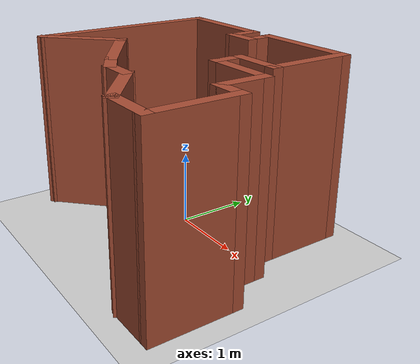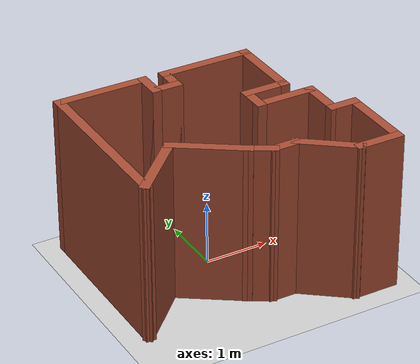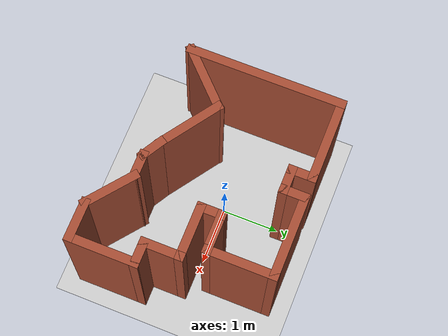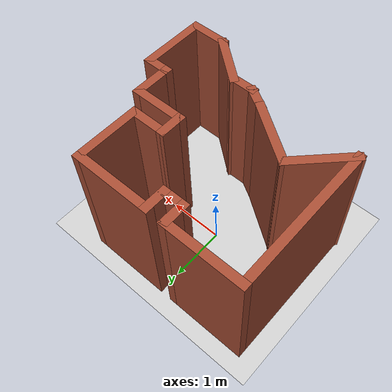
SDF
<sdf version="1.7">
 <world name="default">
  <light name="sun" type="directional">
   <pose>0 0 10 0 -0 0</pose>
   <diffuse>0.8 0.8 0.8 1</diffuse>
   <specular>0.2 0.2 0.2 1</specular>
   <attenuation>
    <range>1000</range>
    <constant>0.9</constant>
    <linear>0.01</linear>
    <quadratic>0.001</quadratic>
   </attenuation>
   <direction>-0.5 0.1 -0.9</direction>
   <spot><inner_angle>0</inner_angle><outer_angle>0</outer_angle><falloff>0</falloff></spot>
  </light>
  <model name="ground_plane">
   <static>1</static>
   <link name="link">
    <collision name="collision">
     <geometry><plane><normal>0 0 1</normal><size>100 100</size></plane></geometry>
     <surface>
      <contact><collide_bitmask>65535</collide_bitmask></contact>
      <friction><ode><mu>100</mu><mu2>50</mu2></ode></friction>
     </surface>
    </collision>
    <visual name="visual">
     <cast_shadows>0</cast_shadows>
     <geometry><plane><normal>0 0 1</normal><size>100 100</size></plane></geometry>
     <material>
      <script><uri>file://media/materials/scripts/gazebo.material</uri><name>Gazebo/Grey</name></script>
     </material>
    </visual>
   </link>
  </model>
  <gravity>0 0 -9.8</gravity>
  <magnetic_field>6e-06 2.3e-05 -4.2e-05</magnetic_field>
  <atmosphere type="adiabatic"/>
  <physics type="ode">
   <max_step_size>0.001</max_step_size>
   <real_time_factor>1</real_time_factor>
   <real_time_update_rate>1000</real_time_update_rate>
  </physics>
  <scene><ambient>0.4 0.4 0.4 1</ambient><background>0.7 0.7 0.7 1</background><shadows>1</shadows></scene>
  <spherical_coordinates>
   <surface_model>EARTH_WGS84</surface_model>
   <latitude_deg>0</latitude_deg>
   <longitude_deg>0</longitude_deg>
   <elevation>0</elevation>
   <heading_deg>0</heading_deg>
  </spherical_coordinates>
  <model name="Untitled1">
   <model name="MAP_WORLD">
    <link name="Wall_21">
     <collision name="Wall_21_Collision">
      <geometry><box><size>0.5 0.15 2.5</size></box></geometry>
      <pose>0 0 1.25 0 -0 0</pose>
     </collision>
     <visual name="Wall_21_Visual">
      <pose>0 0 1.25 0 -0 0</pose>
      <geometry><box><size>0.5 0.15 2.5</size></box></geometry>
      <material>
       <script><uri>file://media/materials/scripts/gazebo.material</uri><name>Gazebo/Bricks</name></script>
       <ambient>1 1 1 1</ambient>
      </material>
      <meta><layer>0</layer></meta>
     </visual>
     <pose>0.022087 -0.937359 0 0 -0 -0.523599</pose>
    </link>
    <link name="Wall_23">
     <collision name="Wall_23_Collision">
      <geometry><box><size>0.51 0.15 2.5</size></box></geometry>
      <pose>0 0 1.25 0 -0 0</pose>
     </collision>
     <visual name="Wall_23_Visual">
      <pose>0 0 1.25 0 -0 0</pose>
      <geometry><box><size>0.51 0.15 2.5</size></box></geometry>
      <material>
       <script><uri>file://media/materials/scripts/gazebo.material</uri><name>Gazebo/Bricks</name></script>
       <ambient>1 1 1 1</ambient>
      </material>
      <meta><layer>0</layer></meta>
     </visual>
     <pose>0.353642 -1.02486 0 0 -0 0</pose>
    </link>
    <link name="Wall_24">
     <collision name="Wall_24_Collision">
      <geometry><box><size>1.03469 0.15 2.5</size></box></geometry>
      <pose>0 0 1.25 0 -0 0</pose>
     </collision>
     <visual name="Wall_24_Visual">
      <pose>0 0 1.25 0 -0 0</pose>
      <geometry><box><size>1.03469 0.15 2.5</size></box></geometry>
      <material>
       <script><uri>file://media/materials/scripts/gazebo.material</uri><name>Gazebo/Bricks</name></script>
       <ambient>1 1 1 1</ambient>
      </material>
      <meta><layer>0</layer></meta>
     </visual>
     <pose>0.892087 -1.28736 0 0 -0 -0.663696</pose>
    </link>
    <link name="Wall_41">
     <collision name="Wall_41_Collision">
      <geometry><box><size>0.75 0.15 2.5</size></box></geometry>
      <pose>0 0 1.25 0 -0 0</pose>
     </collision>
     <visual name="Wall_41_Visual">
      <pose>0 0 1.25 0 -0 0</pose>
      <geometry><box><size>0.75 0.15 2.5</size></box></geometry>
      <material>
       <script><uri>file://media/materials/scripts/gazebo.material</uri><name>Gazebo/Bricks</name></script>
       <ambient>1 1 1 1</ambient>
      </material>
      <meta><layer>0</layer></meta>
     </visual>
     <pose>1.54053 -1.55986 0 0 -0 0</pose>
    </link>
    <link name="Wall_42">
     <collision name="Wall_42_Collision">
      <geometry><box><size>1.25 0.15 2.5</size></box></geometry>
      <pose>0 0 1.25 0 -0 0</pose>
     </collision>
     <visual name="Wall_42_Visual">
      <pose>0 0 1.25 0 -0 0</pose>
      <geometry><box><size>1.25 0.15 2.5</size></box></geometry>
      <material>
       <script><uri>file://media/materials/scripts/gazebo.material</uri><name>Gazebo/Bricks</name></script>
       <ambient>1 1 1 1</ambient>
      </material>
      <meta><layer>0</layer></meta>
     </visual>
     <pose>1.84053 -1.00986 0 0 -0 1.5708</pose>
    </link>
    <link name="Wall_43">
     <collision name="Wall_43_Collision">
      <geometry><box><size>0.5 0.15 2.5</size></box></geometry>
      <pose>0 0 1.25 0 -0 0</pose>
     </collision>
     <visual name="Wall_43_Visual">
      <pose>0 0 1.25 0 -0 0</pose>
      <geometry><box><size>0.5 0.15 2.5</size></box></geometry>
      <material>
       <script><uri>file://media/materials/scripts/gazebo.material</uri><name>Gazebo/Bricks</name></script>
       <ambient>1 1 1 1</ambient>
      </material>
      <meta><layer>0</layer></meta>
     </visual>
     <pose>1.66553 -0.459859 0 0 -0 3.14159</pose>
    </link>
    <link name="Wall_44">
     <collision name="Wall_44_Collision">
      <geometry><box><size>0.75 0.15 2.5</size></box></geometry>
      <pose>0 0 1.25 0 -0 0</pose>
     </collision>
     <visual name="Wall_44_Visual">
      <pose>0 0 1.25 0 -0 0</pose>
      <geometry><box><size>0.75 0.15 2.5</size></box></geometry>
      <material>
       <script><uri>file://media/materials/scripts/gazebo.material</uri><name>Gazebo/Bricks</name></script>
       <ambient>1 1 1 1</ambient>
      </material>
      <meta><layer>0</layer></meta>
     </visual>
     <pose>1.49053 -0.159859 0 0 -0 1.5708</pose>
    </link>
    <link name="Wall_45">
     <collision name="Wall_45_Collision">
      <geometry><box><size>1 0.15 2.5</size></box></geometry>
      <pose>0 0 1.25 0 -0 0</pose>
     </collision>
     <visual name="Wall_45_Visual">
      <pose>0 0 1.25 0 -0 0</pose>
      <geometry><box><size>1 0.15 2.5</size></box></geometry>
      <material>
       <script><uri>file://media/materials/scripts/gazebo.material</uri><name>Gazebo/Bricks</name></script>
       <ambient>1 1 1 1</ambient>
      </material>
      <meta><layer>0</layer></meta>
     </visual>
     <pose>1.06553 0.140141 0 0 -0 3.14159</pose>
    </link>
    <link name="Wall_58">
     <collision name="Wall_58_Collision">
      <geometry><box><size>0.5 0.15 2.5</size></box></geometry>
      <pose>0 0 1.25 0 -0 0</pose>
     </collision>
     <visual name="Wall_58_Visual">
      <pose>0 0 1.25 0 -0 0</pose>
      <geometry><box><size>0.5 0.15 2.5</size></box></geometry>
      <material>
       <script><uri>file://media/materials/scripts/gazebo.material</uri><name>Gazebo/Bricks</name></script>
       <ambient>1 1 1 1</ambient>
      </material>
      <meta><layer>0</layer></meta>
     </visual>
     <pose>0.640533 0.315141 0 0 -0 1.5708</pose>
    </link>
    <link name="Wall_62">
     <collision name="Wall_62_Collision">
      <geometry><box><size>0.75 0.15 2.5</size></box></geometry>
      <pose>0 0 1.25 0 -0 0</pose>
     </collision>
     <visual name="Wall_62_Visual">
      <pose>0 0 1.25 0 -0 0</pose>
      <geometry><box><size>0.75 0.15 2.5</size></box></geometry>
      <material>
       <script><uri>file://media/materials/scripts/gazebo.material</uri><name>Gazebo/Bricks</name></script>
       <ambient>1 1 1 1</ambient>
      </material>
      <meta><layer>0</layer></meta>
     </visual>
     <pose>0.940533 0.490141 0 0 -0 0</pose>
    </link>
    <link name="Wall_65">
     <collision name="Wall_65_Collision">
      <geometry><box><size>1.25 0.15 2.5</size></box></geometry>
      <pose>0 0 1.25 0 -0 0</pose>
     </collision>
     <visual name="Wall_65_Visual">
      <pose>0 0 1.25 0 -0 0</pose>
      <geometry><box><size>1.25 0.15 2.5</size></box></geometry>
      <material>
       <script><uri>file://media/materials/scripts/gazebo.material</uri><name>Gazebo/Bricks</name></script>
       <ambient>1 1 1 1</ambient>
      </material>
      <meta><layer>0</layer></meta>
     </visual>
     <pose>1.24053 1.04014 0 0 -0 1.5708</pose>
    </link>
    <link name="Wall_66">
     <collision name="Wall_66_Collision">
      <geometry><box><size>1.5 0.15 2.5</size></box></geometry>
      <pose>0 0 1.25 0 -0 0</pose>
     </collision>
     <visual name="Wall_66_Visual">
      <pose>0 0 1.25 0 -0 0</pose>
      <geometry><box><size>1.5 0.15 2.5</size></box></geometry>
      <material>
       <script><uri>file://media/materials/scripts/gazebo.material</uri><name>Gazebo/Bricks</name></script>
       <ambient>1 1 1 1</ambient>
      </material>
      <meta><layer>0</layer></meta>
     </visual>
     <pose>0.565533 1.59014 0 0 -0 3.14159</pose>
    </link>
    <link name="Wall_68">
     <collision name="Wall_68_Collision">
      <geometry><box><size>0.5 0.15 2.5</size></box></geometry>
      <pose>0 0 1.25 0 -0 0</pose>
     </collision>
     <visual name="Wall_68_Visual">
      <pose>0 0 1.25 0 -0 0</pose>
      <geometry><box><size>0.5 0.15 2.5</size></box></geometry>
      <material>
       <script><uri>file://media/materials/scripts/gazebo.material</uri><name>Gazebo/Bricks</name></script>
       <ambient>1 1 1 1</ambient>
      </material>
      <meta><layer>0</layer></meta>
     </visual>
     <pose>-0.109467 1.41514 0 0 -0 -1.5708</pose>
    </link>
    <link name="Wall_69">
     <collision name="Wall_69_Collision">
      <geometry><box><size>0.5 0.15 2.5</size></box></geometry>
      <pose>0 0 1.25 0 -0 0</pose>
     </collision>
     <visual name="Wall_69_Visual">
      <pose>0 0 1.25 0 -0 0</pose>
      <geometry><box><size>0.5 0.15 2.5</size></box></geometry>
      <material>
       <script><uri>file://media/materials/scripts/gazebo.material</uri><name>Gazebo/Bricks</name></script>
       <ambient>1 1 1 1</ambient>
      </material>
      <meta><layer>0</layer></meta>
     </visual>
     <pose>-0.284467 1.24014 0 0 -0 3.14159</pose>
    </link>
    <link name="Wall_70">
     <collision name="Wall_70_Collision">
      <geometry><box><size>0.5 0.15 2.5</size></box></geometry>
      <pose>0 0 1.25 0 -0 0</pose>
     </collision>
     <visual name="Wall_70_Visual">
      <pose>0 0 1.25 0 -0 0</pose>
      <geometry><box><size>0.5 0.15 2.5</size></box></geometry>
      <material>
       <script><uri>file://media/materials/scripts/gazebo.material</uri><name>Gazebo/Bricks</name></script>
       <ambient>1 1 1 1</ambient>
      </material>
      <meta><layer>0</layer></meta>
     </visual>
     <pose>-0.459467 1.41514 0 0 -0 1.5708</pose>
    </link>
    <link name="Wall_71">
     <collision name="Wall_71_Collision">
      <geometry><box><size>1.5 0.15 2.5</size></box></geometry>
      <pose>0 0 1.25 0 -0 0</pose>
     </collision>
     <visual name="Wall_71_Visual">
      <pose>0 0 1.25 0 -0 0</pose>
      <geometry><box><size>1.5 0.15 2.5</size></box></geometry>
      <material>
       <script><uri>file://media/materials/scripts/gazebo.material</uri><name>Gazebo/Bricks</name></script>
       <ambient>1 1 1 1</ambient>
      </material>
      <meta><layer>0</layer></meta>
     </visual>
     <pose>-1.13447 1.59014 0 0 -0 3.14159</pose>
    </link>
    <link name="Wall_72">
     <collision name="Wall_72_Collision">
      <geometry><box><size>2.75 0.15 2.5</size></box></geometry>
      <pose>0 0 1.25 0 -0 0</pose>
     </collision>
     <visual name="Wall_72_Visual">
      <pose>0 0 1.25 0 -0 0</pose>
      <geometry><box><size>2.75 0.15 2.5</size></box></geometry>
      <material>
       <script><uri>file://media/materials/scripts/gazebo.material</uri><name>Gazebo/Bricks</name></script>
       <ambient>1 1 1 1</ambient>
      </material>
      <meta><layer>0</layer></meta>
     </visual>
     <pose>-1.80947 0.290141 0 0 -0 -1.5708</pose>
    </link>
    <link name="Wall_73">
     <collision name="Wall_73_Collision">
      <geometry><box><size>1.25 0.15 2.5</size></box></geometry>
      <pose>0 0 1.25 0 -0 0</pose>
     </collision>
     <visual name="Wall_73_Visual">
      <pose>0 0 1.25 0 -0 0</pose>
      <geometry><box><size>1.25 0.15 2.5</size></box></geometry>
      <material>
       <script><uri>file://media/materials/scripts/gazebo.material</uri><name>Gazebo/Bricks</name></script>
       <ambient>1 1 1 1</ambient>
      </material>
      <meta><layer>0</layer></meta>
     </visual>
     <pose>-1.42056 -0.620951 0 0 -0 0.785398</pose>
    </link>
    <link name="Wall_74">
     <collision name="Wall_74_Collision">
      <geometry><box><size>1.24345 0.15 2.5</size></box></geometry>
      <pose>0 0 1.25 0 -0 0</pose>
     </collision>
     <visual name="Wall_74_Visual">
      <pose>0 0 1.25 0 -0 0</pose>
      <geometry><box><size>1.24345 0.15 2.5</size></box></geometry>
      <material>
       <script><uri>file://media/materials/scripts/gazebo.material</uri><name>Gazebo/Bricks</name></script>
       <ambient>1 1 1 1</ambient>
      </material>
      <meta><layer>0</layer></meta>
     </visual>
     <pose>-0.580558 -0.540951 0 0 -0 -0.600454</pose>
    </link>
    <static>1</static>
   </model>
   <static>0</static>
   <pose>0.171796 -0.246016 0 0 -0 0</pose>
  </model>
 </world>
</sdf>
